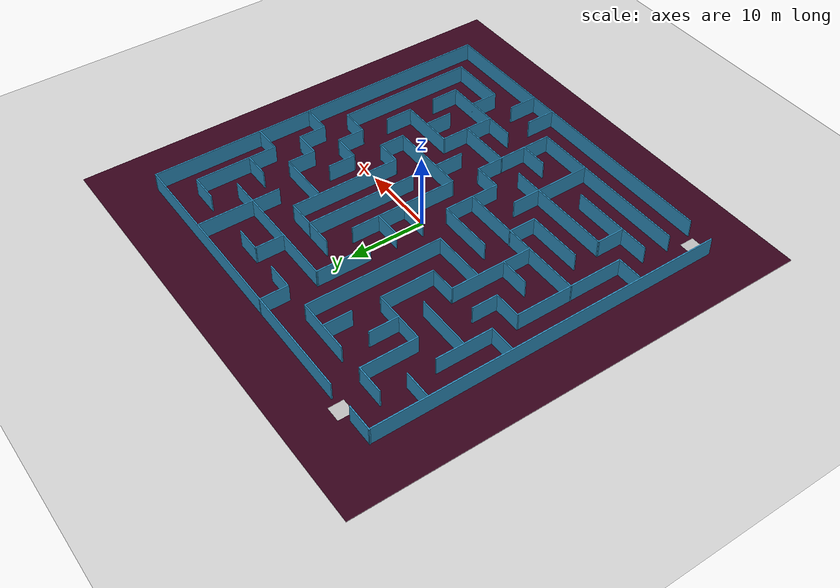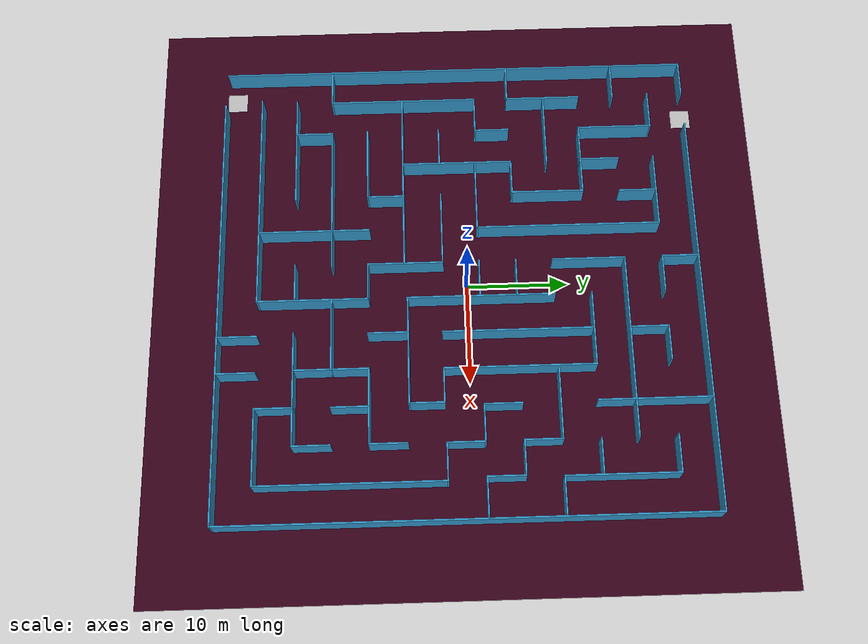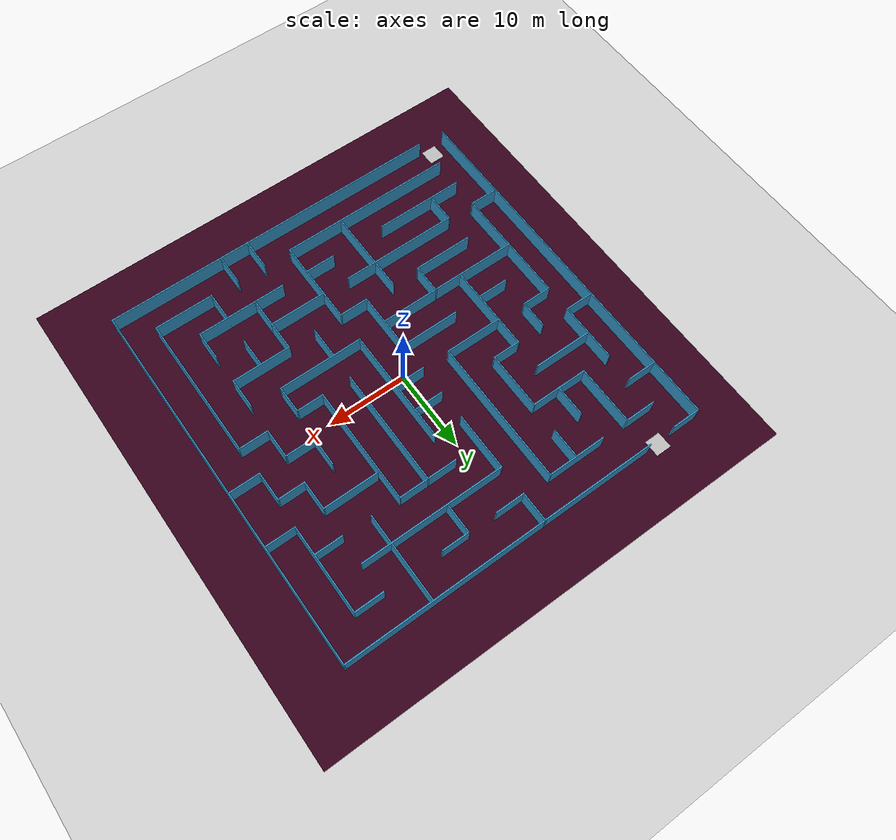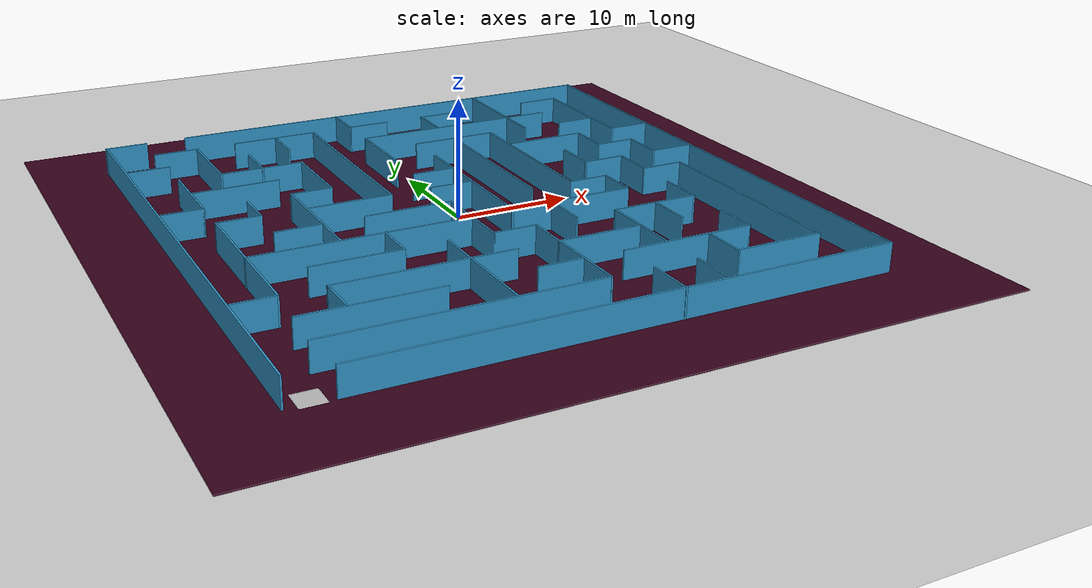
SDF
<sdf version="1.6">
 <world name="default">
  <light name="sun" type="directional">
   <pose>0 0 10 0 -0 0</pose>
   <diffuse>0.8 0.8 0.8 1</diffuse>
   <specular>0.2 0.2 0.2 1</specular>
   <attenuation>
    <range>1000</range>
    <constant>0.9</constant>
    <linear>0.01</linear>
    <quadratic>0.001</quadratic>
   </attenuation>
   <direction>-0.5 0.1 -0.9</direction>
  </light>
  <model name="ground_plane">
   <static>1</static>
   <link name="link">
    <collision name="collision">
     <geometry><plane><normal>0 0 1</normal><size>100 100</size></plane></geometry>
     <surface>
      <contact><collide_bitmask>65535</collide_bitmask></contact>
      <friction><ode><mu>100</mu><mu2>50</mu2></ode></friction>
     </surface>
    </collision>
    <visual name="visual">
     <cast_shadows>0</cast_shadows>
     <geometry><plane><normal>0 0 1</normal><size>100 100</size></plane></geometry>
     <material>
      <script><uri>file://media/materials/scripts/gazebo.material</uri><name>Gazebo/Grey</name></script>
     </material>
    </visual>
   </link>
  </model>
  <gravity>0 0 -9.8</gravity>
  <magnetic_field>6e-06 2.3e-05 -4.2e-05</magnetic_field>
  <atmosphere type="adiabatic"/>
  <physics name="default_physics" default="0" type="ode">
   <max_step_size>0.001</max_step_size>
   <real_time_factor>1</real_time_factor>
   <real_time_update_rate>1000</real_time_update_rate>
  </physics>
  <scene><ambient>0.4 0.4 0.4 1</ambient><background>0.7 0.7 0.7 1</background><shadows>1</shadows></scene>
  <audio><device>default</device></audio>
  <spherical_coordinates>
   <surface_model>EARTH_WGS84</surface_model>
   <latitude_deg>0</latitude_deg>
   <longitude_deg>0</longitude_deg>
   <elevation>0</elevation>
   <heading_deg>0</heading_deg>
  </spherical_coordinates>
  <model name="start_marker">
   <pose>-21.4513 -23.4037 0.026924 0 -0 0</pose>
   <static>1</static>
   <link name="body">
    <visual name="visual">
     <geometry><mesh><uri>model://start_marker/meshes/marker.obj</uri></mesh></geometry>
    </visual>
   </link>
  </model>
  <model name="stop_marker">
   <pose>-18.1381 22.9182 0.026924 0 -0 0</pose>
   <static>1</static>
   <link name="body">
    <visual name="visual">
     <geometry><mesh><uri>model://stop_marker/meshes/marker.obj</uri></mesh></geometry>
    </visual>
   </link>
  </model>
  <model name="FinalMaze">
   <pose>0.42654 -0.73794 0 0 -0 0</pose>
   <link name="Wall_0">
    <collision name="Wall_0_Collision">
     <geometry><box><size>60.75 60.15 0.1</size></box></geometry>
     <pose>0 0 0.05 0 -0 0</pose>
    </collision>
    <visual name="Wall_0_Visual">
     <pose>0 0 0.05 0 -0 0</pose>
     <geometry><box><size>60.75 60.15 0.1</size></box></geometry>
     <material>
      <script><uri>file://media/materials/scripts/gazebo.material</uri><name>Gazebo/Grey</name></script>
      <ambient>0.2 0 0.1 0</ambient>
     </material>
     <meta><layer>0</layer></meta>
    </visual>
    <pose>0 -1e-06 0 0 -0 -1.5708</pose>
   </link>
   <link name="Wall_10">
    <collision name="Wall_10_Collision">
     <geometry><box><size>3.75 0.15 2.5</size></box></geometry>
     <pose>0 0 1.25 0 -0 0</pose>
    </collision>
    <visual name="Wall_10_Visual">
     <pose>0 0 1.25 0 -0 0</pose>
     <geometry><box><size>3.75 0.15 2.5</size></box></geometry>
     <material>
      <script><uri>file://media/materials/scripts/gazebo.material</uri><name>Gazebo/Grey</name></script>
      <ambient>0.2 0.6 0.8 1</ambient>
     </material>
     <meta><layer>0</layer></meta>
    </visual>
    <pose>-21.955 16.4058 0 0 -0 0</pose>
   </link>
   <link name="Wall_100">
    <collision name="Wall_100_Collision">
     <geometry><box><size>3.75 0.15 2.5</size></box></geometry>
     <pose>0 0 1.25 0 -0 0</pose>
    </collision>
    <visual name="Wall_100_Visual">
     <pose>0 0 1.25 0 -0 0</pose>
     <geometry><box><size>3.75 0.15 2.5</size></box></geometry>
     <material>
      <script><uri>file://media/materials/scripts/gazebo.material</uri><name>Gazebo/Grey</name></script>
      <ambient>0.2 0.6 0.8 1</ambient>
     </material>
     <meta><layer>0</layer></meta>
    </visual>
    <pose>12.1508 -17.9194 0 0 -0 -1.5708</pose>
   </link>
   <link name="Wall_101">
    <collision name="Wall_101_Collision">
     <geometry><box><size>7.5 0.15 2.5</size></box></geometry>
     <pose>0 0 1.25 0 -0 0</pose>
    </collision>
    <visual name="Wall_101_Visual">
     <pose>0 0 1.25 0 -0 0</pose>
     <geometry><box><size>7.5 0.15 2.5</size></box></geometry>
     <material>
      <script><uri>file://media/materials/scripts/gazebo.material</uri><name>Gazebo/Grey</name></script>
      <ambient>0.2 0.6 0.8 1</ambient>
     </material>
     <meta><layer>0</layer></meta>
    </visual>
    <pose>15.8258 -19.7194 0 0 -0 0</pose>
   </link>
   <link name="Wall_102">
    <collision name="Wall_102_Collision">
     <geometry><box><size>18.25 0.15 2.5</size></box></geometry>
     <pose>0 0 1.25 0 -0 0</pose>
    </collision>
    <visual name="Wall_102_Visual">
     <pose>0 0 1.25 0 -0 0</pose>
     <geometry><box><size>18.25 0.15 2.5</size></box></geometry>
     <material>
      <script><uri>file://media/materials/scripts/gazebo.material</uri><name>Gazebo/Grey</name></script>
      <ambient>0.2 0.6 0.8 1</ambient>
     </material>
     <meta><layer>0</layer></meta>
    </visual>
    <pose>19.5008 -10.6694 0 0 -0 1.5708</pose>
   </link>
   <link name="Wall_105">
    <collision name="Wall_105_Collision">
     <geometry><box><size>3.75 0.15 2.5</size></box></geometry>
     <pose>0 0 1.25 0 -0 0</pose>
    </collision>
    <visual name="Wall_105_Visual">
     <pose>0 0 1.25 0 -0 0</pose>
     <geometry><box><size>3.75 0.15 2.5</size></box></geometry>
     <material>
      <script><uri>file://media/materials/scripts/gazebo.material</uri><name>Gazebo/Grey</name></script>
      <ambient>0.2 0.6 0.8 1</ambient>
     </material>
     <meta><layer>0</layer></meta>
    </visual>
    <pose>17.7008 -1.61938 0 0 -0 3.14159</pose>
   </link>
   <link name="Wall_106">
    <collision name="Wall_106_Collision">
     <geometry><box><size>3.75 0.15 2.5</size></box></geometry>
     <pose>0 0 1.25 0 -0 0</pose>
    </collision>
    <visual name="Wall_106_Visual">
     <pose>0 0 1.25 0 -0 0</pose>
     <geometry><box><size>3.75 0.15 2.5</size></box></geometry>
     <material>
      <script><uri>file://media/materials/scripts/gazebo.material</uri><name>Gazebo/Grey</name></script>
      <ambient>0.2 0.6 0.8 1</ambient>
     </material>
     <meta><layer>0</layer></meta>
    </visual>
    <pose>15.9008 0.180624 0 0 -0 1.5708</pose>
   </link>
   <link name="Wall_107">
    <collision name="Wall_107_Collision">
     <geometry><box><size>3.75 0.15 2.5</size></box></geometry>
     <pose>0 0 1.25 0 -0 0</pose>
    </collision>
    <visual name="Wall_107_Visual">
     <pose>0 0 1.25 0 -0 0</pose>
     <geometry><box><size>3.75 0.15 2.5</size></box></geometry>
     <material>
      <script><uri>file://media/materials/scripts/gazebo.material</uri><name>Gazebo/Grey</name></script>
      <ambient>0.2 0.6 0.8 1</ambient>
     </material>
     <meta><layer>0</layer></meta>
    </visual>
    <pose>14.1008 1.98062 0 0 -0 3.14159</pose>
   </link>
   <link name="Wall_108">
    <collision name="Wall_108_Collision">
     <geometry><box><size>3.75 0.15 2.5</size></box></geometry>
     <pose>0 0 1.25 0 -0 0</pose>
    </collision>
    <visual name="Wall_108_Visual">
     <pose>0 0 1.25 0 -0 0</pose>
     <geometry><box><size>3.75 0.15 2.5</size></box></geometry>
     <material>
      <script><uri>file://media/materials/scripts/gazebo.material</uri><name>Gazebo/Grey</name></script>
      <ambient>0.2 0.6 0.8 1</ambient>
     </material>
     <meta><layer>0</layer></meta>
    </visual>
    <pose>12.3008 3.78062 0 0 -0 1.5708</pose>
   </link>
   <link name="Wall_110">
    <collision name="Wall_110_Collision">
     <geometry><box><size>14.75 0.15 2.5</size></box></geometry>
     <pose>0 0 1.25 0 -0 0</pose>
    </collision>
    <visual name="Wall_110_Visual">
     <pose>0 0 1.25 0 -0 0</pose>
     <geometry><box><size>14.75 0.15 2.5</size></box></geometry>
     <material>
      <script><uri>file://media/materials/scripts/gazebo.material</uri><name>Gazebo/Grey</name></script>
      <ambient>0.2 0.6 0.8 1</ambient>
     </material>
     <meta><layer>0</layer></meta>
    </visual>
    <pose>5.00036 5.55631 0 0 -0 -1.5708</pose>
   </link>
   <link name="Wall_112">
    <collision name="Wall_112_Collision">
     <geometry><box><size>7 0.15 2.5</size></box></geometry>
     <pose>0 0 1.25 0 -0 0</pose>
    </collision>
    <visual name="Wall_112_Visual">
     <pose>0 0 1.25 0 -0 0</pose>
     <geometry><box><size>7 0.15 2.5</size></box></geometry>
     <material>
      <script><uri>file://media/materials/scripts/gazebo.material</uri><name>Gazebo/Grey</name></script>
      <ambient>0.2 0.6 0.8 1</ambient>
     </material>
     <meta><layer>0</layer></meta>
    </visual>
    <pose>12.4325 9.20622 0 0 -0 0</pose>
   </link>
   <link name="Wall_113">
    <collision name="Wall_113_Collision">
     <geometry><box><size>3.75 0.15 2.5</size></box></geometry>
     <pose>0 0 1.25 0 -0 0</pose>
    </collision>
    <visual name="Wall_113_Visual">
     <pose>0 0 1.25 0 -0 0</pose>
     <geometry><box><size>3.75 0.15 2.5</size></box></geometry>
     <material>
      <script><uri>file://media/materials/scripts/gazebo.material</uri><name>Gazebo/Grey</name></script>
      <ambient>0.2 0.6 0.8 1</ambient>
     </material>
     <meta><layer>0</layer></meta>
    </visual>
    <pose>15.8575 7.40622 0 0 -0 -1.5708</pose>
   </link>
   <link name="Wall_114">
    <collision name="Wall_114_Collision">
     <geometry><box><size>3.5 0.15 2.5</size></box></geometry>
     <pose>0 0 1.25 0 -0 0</pose>
    </collision>
    <visual name="Wall_114_Visual">
     <pose>0 0 1.25 0 -0 0</pose>
     <geometry><box><size>3.5 0.15 2.5</size></box></geometry>
     <material>
      <script><uri>file://media/materials/scripts/gazebo.material</uri><name>Gazebo/Grey</name></script>
      <ambient>0.2 0.6 0.8 1</ambient>
     </material>
     <meta><layer>0</layer></meta>
    </visual>
    <pose>17.5325 5.60621 0 0 -0 0</pose>
   </link>
   <link name="Wall_115">
    <collision name="Wall_115_Collision">
     <geometry><box><size>3.75 0.15 2.5</size></box></geometry>
     <pose>0 0 1.25 0 -0 0</pose>
    </collision>
    <visual name="Wall_115_Visual">
     <pose>0 0 1.25 0 -0 0</pose>
     <geometry><box><size>3.75 0.15 2.5</size></box></geometry>
     <material>
      <script><uri>file://media/materials/scripts/gazebo.material</uri><name>Gazebo/Grey</name></script>
      <ambient>0.2 0.6 0.8 1</ambient>
     </material>
     <meta><layer>0</layer></meta>
    </visual>
    <pose>19.2075 3.80621 0 0 -0 -1.5708</pose>
   </link>
   <link name="Wall_116">
    <collision name="Wall_116_Collision">
     <geometry><box><size>4 0.15 2.5</size></box></geometry>
     <pose>0 0 1.25 0 -0 0</pose>
    </collision>
    <visual name="Wall_116_Visual">
     <pose>0 0 1.25 0 -0 0</pose>
     <geometry><box><size>4 0.15 2.5</size></box></geometry>
     <material>
      <script><uri>file://media/materials/scripts/gazebo.material</uri><name>Gazebo/Grey</name></script>
      <ambient>0.2 0.6 0.8 1</ambient>
     </material>
     <meta><layer>0</layer></meta>
    </visual>
    <pose>21.1325 2.00622 0 0 -0 0</pose>
   </link>
   <link name="Wall_118">
    <collision name="Wall_118_Collision">
     <geometry><box><size>3.75 0.15 2.5</size></box></geometry>
     <pose>0 0 1.25 0 -0 0</pose>
    </collision>
    <visual name="Wall_118_Visual">
     <pose>0 0 1.25 0 -0 0</pose>
     <geometry><box><size>3.75 0.15 2.5</size></box></geometry>
     <material>
      <script><uri>file://media/materials/scripts/gazebo.material</uri><name>Gazebo/Grey</name></script>
      <ambient>0.2 0.6 0.8 1</ambient>
     </material>
     <meta><layer>0</layer></meta>
    </visual>
    <pose>17.5523 19.9978 0 0 -0 0</pose>
   </link>
   <link name="Wall_119">
    <collision name="Wall_119_Collision">
     <geometry><box><size>11 0.15 2.5</size></box></geometry>
     <pose>0 0 1.25 0 -0 0</pose>
    </collision>
    <visual name="Wall_119_Visual">
     <pose>0 0 1.25 0 -0 0</pose>
     <geometry><box><size>11 0.15 2.5</size></box></geometry>
     <material>
      <script><uri>file://media/materials/scripts/gazebo.material</uri><name>Gazebo/Grey</name></script>
      <ambient>0.2 0.6 0.8 1</ambient>
     </material>
     <meta><layer>0</layer></meta>
    </visual>
    <pose>19.3523 14.5728 0 0 -0 -1.5708</pose>
   </link>
   <link name="Wall_12">
    <collision name="Wall_12_Collision">
     <geometry><box><size>3.5913 0.15 2.5</size></box></geometry>
     <pose>0 0 1.25 0 -0 0</pose>
    </collision>
    <visual name="Wall_12_Visual">
     <pose>0 0 1.25 0 -0 0</pose>
     <geometry><box><size>3.5913 0.15 2.5</size></box></geometry>
     <material>
      <script><uri>file://media/materials/scripts/gazebo.material</uri><name>Gazebo/Grey</name></script>
      <ambient>0.2 0.6 0.8 1</ambient>
     </material>
     <meta><layer>0</layer></meta>
    </visual>
    <pose>-21.9946 5.49522 0 0 -0 0</pose>
   </link>
   <link name="Wall_120">
    <collision name="Wall_120_Collision">
     <geometry><box><size>3.75 0.15 2.5</size></box></geometry>
     <pose>0 0 1.25 0 -0 0</pose>
    </collision>
    <visual name="Wall_120_Visual">
     <pose>0 0 1.25 0 -0 0</pose>
     <geometry><box><size>3.75 0.15 2.5</size></box></geometry>
     <material>
      <script><uri>file://media/materials/scripts/gazebo.material</uri><name>Gazebo/Grey</name></script>
      <ambient>0.2 0.6 0.8 1</ambient>
     </material>
     <meta><layer>0</layer></meta>
    </visual>
    <pose>21.1523 9.14781 0 0 -0 0</pose>
   </link>
   <link name="Wall_122">
    <collision name="Wall_122_Collision">
     <geometry><box><size>3.5 0.15 2.5</size></box></geometry>
     <pose>0 0 1.25 0 -0 0</pose>
    </collision>
    <visual name="Wall_122_Visual">
     <pose>0 0 1.25 0 -0 0</pose>
     <geometry><box><size>3.5 0.15 2.5</size></box></geometry>
     <material>
      <script><uri>file://media/materials/scripts/gazebo.material</uri><name>Gazebo/Grey</name></script>
      <ambient>0.2 0.6 0.8 1</ambient>
     </material>
     <meta><layer>0</layer></meta>
    </visual>
    <pose>17.5687 12.777 0 0 -0 3.14159</pose>
   </link>
   <link name="Wall_124">
    <collision name="Wall_124_Collision">
     <geometry><box><size>4 0.15 2.5</size></box></geometry>
     <pose>0 0 1.25 0 -0 0</pose>
    </collision>
    <visual name="Wall_124_Visual">
     <pose>0 0 1.25 0 -0 0</pose>
     <geometry><box><size>4 0.15 2.5</size></box></geometry>
     <material>
      <script><uri>file://media/materials/scripts/gazebo.material</uri><name>Gazebo/Grey</name></script>
      <ambient>0.2 0.6 0.8 1</ambient>
     </material>
     <meta><layer>0</layer></meta>
    </visual>
    <pose>4.9715 -21.6041 0 0 -0 1.5708</pose>
   </link>
   <link name="Wall_126">
    <collision name="Wall_126_Collision">
     <geometry><box><size>3.75 0.15 2.5</size></box></geometry>
     <pose>0 0 1.25 0 -0 0</pose>
    </collision>
    <visual name="Wall_126_Visual">
     <pose>0 0 1.25 0 -0 0</pose>
     <geometry><box><size>3.75 0.15 2.5</size></box></geometry>
     <material>
      <script><uri>file://media/materials/scripts/gazebo.material</uri><name>Gazebo/Grey</name></script>
      <ambient>0.2 0.6 0.8 1</ambient>
     </material>
     <meta><layer>0</layer></meta>
    </visual>
    <pose>8.6216 -21.5307 0 0 -0 1.5708</pose>
   </link>
   <link name="Wall_13">
    <collision name="Wall_13_Collision">
     <geometry><box><size>7.5 0.15 2.5</size></box></geometry>
     <pose>0 0 1.25 0 -0 0</pose>
    </collision>
    <visual name="Wall_13_Visual">
     <pose>0 0 1.25 0 -0 0</pose>
     <geometry><box><size>7.5 0.15 2.5</size></box></geometry>
     <material>
      <script><uri>file://media/materials/scripts/gazebo.material</uri><name>Gazebo/Grey</name></script>
      <ambient>0.2 0.6 0.8 1</ambient>
     </material>
     <meta><layer>0</layer></meta>
    </visual>
    <pose>-20.2343 9.17022 0 0 -0 1.5708</pose>
   </link>
   <link name="Wall_16">
    <collision name="Wall_16_Collision">
     <geometry><box><size>7.5 0.15 2.5</size></box></geometry>
     <pose>0 0 1.25 0 -0 0</pose>
    </collision>
    <visual name="Wall_16_Visual">
     <pose>0 0 1.25 0 -0 0</pose>
     <geometry><box><size>7.5 0.15 2.5</size></box></geometry>
     <material>
      <script><uri>file://media/materials/scripts/gazebo.material</uri><name>Gazebo/Grey</name></script>
      <ambient>0.2 0.6 0.8 1</ambient>
     </material>
     <meta><layer>0</layer></meta>
    </visual>
    <pose>-16.5578 9.22002 0 0 -0 0</pose>
   </link>
   <link name="Wall_18">
    <collision name="Wall_18_Collision">
     <geometry><box><size>3.90879 0.15 2.5</size></box></geometry>
     <pose>0 0 1.25 0 -0 0</pose>
    </collision>
    <visual name="Wall_18_Visual">
     <pose>0 0 1.25 0 -0 0</pose>
     <geometry><box><size>3.90879 0.15 2.5</size></box></geometry>
     <material>
      <script><uri>file://media/materials/scripts/gazebo.material</uri><name>Gazebo/Grey</name></script>
      <ambient>0.2 0.6 0.8 1</ambient>
     </material>
     <meta><layer>0</layer></meta>
    </visual>
    <pose>-18.5328 20.0291 0 0 -0 0</pose>
   </link>
   <link name="Wall_2">
    <collision name="Wall_2_Collision">
     <geometry><box><size>3.68458 0.15 2.5</size></box></geometry>
     <pose>0 0 1.25 0 -0 0</pose>
    </collision>
    <visual name="Wall_2_Visual">
     <pose>0 0 1.25 0 -0 0</pose>
     <geometry><box><size>3.68458 0.15 2.5</size></box></geometry>
     <material>
      <script><uri>file://media/materials/scripts/gazebo.material</uri><name>Gazebo/Grey</name></script>
      <ambient>0.2 0.6 0.8 1</ambient>
     </material>
     <meta><layer>0</layer></meta>
    </visual>
    <pose>-22.0956 23.56 0 0 -0 3.14159</pose>
   </link>
   <link name="Wall_20">
    <collision name="Wall_20_Collision">
     <geometry><box><size>7.5 0.15 2.5</size></box></geometry>
     <pose>0 0 1.25 0 -0 0</pose>
    </collision>
    <visual name="Wall_20_Visual">
     <pose>0 0 1.25 0 -0 0</pose>
     <geometry><box><size>7.5 0.15 2.5</size></box></geometry>
     <material>
      <script><uri>file://media/materials/scripts/gazebo.material</uri><name>Gazebo/Grey</name></script>
      <ambient>0.2 0.6 0.8 1</ambient>
     </material>
     <meta><layer>0</layer></meta>
    </visual>
    <pose>-16.6761 16.3541 0 0 -0 -1.5708</pose>
   </link>
   <link name="Wall_22">
    <collision name="Wall_22_Collision">
     <geometry><box><size>7.25 0.15 2.5</size></box></geometry>
     <pose>0 0 1.25 0 -0 0</pose>
    </collision>
    <visual name="Wall_22_Visual">
     <pose>0 0 1.25 0 -0 0</pose>
     <geometry><box><size>7.25 0.15 2.5</size></box></geometry>
     <material>
      <script><uri>file://media/materials/scripts/gazebo.material</uri><name>Gazebo/Grey</name></script>
      <ambient>0.2 0.6 0.8 1</ambient>
     </material>
     <meta><layer>0</layer></meta>
    </visual>
    <pose>-13.1261 12.6791 0 0 -0 0</pose>
   </link>
   <link name="Wall_23">
    <collision name="Wall_23_Collision">
     <geometry><box><size>7.25 0.15 2.5</size></box></geometry>
     <pose>0 0 1.25 0 -0 0</pose>
    </collision>
    <visual name="Wall_23_Visual">
     <pose>0 0 1.25 0 -0 0</pose>
     <geometry><box><size>7.25 0.15 2.5</size></box></geometry>
     <material>
      <script><uri>file://media/materials/scripts/gazebo.material</uri><name>Gazebo/Grey</name></script>
      <ambient>0.2 0.6 0.8 1</ambient>
     </material>
     <meta><layer>0</layer></meta>
    </visual>
    <pose>-9.5761 9.12912 0 0 -0 -1.5708</pose>
   </link>
   <link name="Wall_24">
    <collision name="Wall_24_Collision">
     <geometry><box><size>3.59863 0.15 2.5</size></box></geometry>
     <pose>0 0 1.25 0 -0 0</pose>
    </collision>
    <visual name="Wall_24_Visual">
     <pose>0 0 1.25 0 -0 0</pose>
     <geometry><box><size>3.59863 0.15 2.5</size></box></geometry>
     <material>
      <script><uri>file://media/materials/scripts/gazebo.material</uri><name>Gazebo/Grey</name></script>
      <ambient>0.2 0.6 0.8 1</ambient>
     </material>
     <meta><layer>0</layer></meta>
    </visual>
    <pose>-11.3004 5.57911 0 0 -0 3.14159</pose>
   </link>
   <link name="Wall_25">
    <collision name="Wall_25_Collision">
     <geometry><box><size>11 0.15 2.5</size></box></geometry>
     <pose>0 0 1.25 0 -0 0</pose>
    </collision>
    <visual name="Wall_25_Visual">
     <pose>0 0 1.25 0 -0 0</pose>
     <geometry><box><size>11 0.15 2.5</size></box></geometry>
     <material>
      <script><uri>file://media/materials/scripts/gazebo.material</uri><name>Gazebo/Grey</name></script>
      <ambient>0.2 0.6 0.8 1</ambient>
     </material>
     <meta><layer>0</layer></meta>
    </visual>
    <pose>-13.005 0.154115 0 0 -0 -1.5708</pose>
   </link>
   <link name="Wall_27">
    <collision name="Wall_27_Collision">
     <geometry><box><size>3.5 0.15 2.5</size></box></geometry>
     <pose>0 0 1.25 0 -0 0</pose>
    </collision>
    <visual name="Wall_27_Visual">
     <pose>0 0 1.25 0 -0 0</pose>
     <geometry><box><size>3.5 0.15 2.5</size></box></geometry>
     <material>
      <script><uri>file://media/materials/scripts/gazebo.material</uri><name>Gazebo/Grey</name></script>
      <ambient>0.2 0.6 0.8 1</ambient>
     </material>
     <meta><layer>0</layer></meta>
    </visual>
    <pose>-16.6616 3.76426 0 0 -0 -1.5708</pose>
   </link>
   <link name="Wall_28">
    <collision name="Wall_28_Collision">
     <geometry><box><size>3.75 0.15 2.5</size></box></geometry>
     <pose>0 0 1.25 0 -0 0</pose>
    </collision>
    <visual name="Wall_28_Visual">
     <pose>0 0 1.25 0 -0 0</pose>
     <geometry><box><size>3.75 0.15 2.5</size></box></geometry>
     <material>
      <script><uri>file://media/materials/scripts/gazebo.material</uri><name>Gazebo/Grey</name></script>
      <ambient>0.2 0.6 0.8 1</ambient>
     </material>
     <meta><layer>0</layer></meta>
    </visual>
    <pose>-18.4616 2.08926 0 0 -0 3.14159</pose>
   </link>
   <link name="Wall_29">
    <collision name="Wall_29_Collision">
     <geometry><box><size>14.75 0.15 2.5</size></box></geometry>
     <pose>0 0 1.25 0 -0 0</pose>
    </collision>
    <visual name="Wall_29_Visual">
     <pose>0 0 1.25 0 -0 0</pose>
     <geometry><box><size>14.75 0.15 2.5</size></box></geometry>
     <material>
      <script><uri>file://media/materials/scripts/gazebo.material</uri><name>Gazebo/Grey</name></script>
      <ambient>0.2 0.6 0.8 1</ambient>
     </material>
     <meta><layer>0</layer></meta>
    </visual>
    <pose>-20.2616 -5.21074 0 0 -0 -1.5708</pose>
   </link>
   <link name="Wall_3">
    <collision name="Wall_3_Collision">
     <geometry><box><size>47 0.15 2.5</size></box></geometry>
     <pose>0 0 1.25 0 -0 0</pose>
    </collision>
    <visual name="Wall_3_Visual">
     <pose>0 0 1.25 0 -0 0</pose>
     <geometry><box><size>47 0.15 2.5</size></box></geometry>
     <material>
      <script><uri>file://media/materials/scripts/gazebo.material</uri><name>Gazebo/Grey</name></script>
      <ambient>0.2 0.6 0.8 1</ambient>
     </material>
     <meta><layer>0</layer></meta>
    </visual>
    <pose>-23.8014 0.135041 0 0 -0 -1.5708</pose>
   </link>
   <link name="Wall_30">
    <collision name="Wall_30_Collision">
     <geometry><box><size>3.5 0.15 2.5</size></box></geometry>
     <pose>0 0 1.25 0 -0 0</pose>
    </collision>
    <visual name="Wall_30_Visual">
     <pose>0 0 1.25 0 -0 0</pose>
     <geometry><box><size>3.5 0.15 2.5</size></box></geometry>
     <material>
      <script><uri>file://media/materials/scripts/gazebo.material</uri><name>Gazebo/Grey</name></script>
      <ambient>0.2 0.6 0.8 1</ambient>
     </material>
     <meta><layer>0</layer></meta>
    </visual>
    <pose>-21.9366 -12.5107 0 0 -0 3.14159</pose>
   </link>
   <link name="Wall_32">
    <collision name="Wall_32_Collision">
     <geometry><box><size>18.25 0.15 2.5</size></box></geometry>
     <pose>0 0 1.25 0 -0 0</pose>
    </collision>
    <visual name="Wall_32_Visual">
     <pose>0 0 1.25 0 -0 0</pose>
     <geometry><box><size>18.25 0.15 2.5</size></box></geometry>
     <material>
      <script><uri>file://media/materials/scripts/gazebo.material</uri><name>Gazebo/Grey</name></script>
      <ambient>0.2 0.6 0.8 1</ambient>
     </material>
     <meta><layer>0</layer></meta>
    </visual>
    <pose>-11.255 -5.35367 0 0 -0 0</pose>
   </link>
   <link name="Wall_34">
    <collision name="Wall_34_Collision">
     <geometry><box><size>7.5 0.15 2.5</size></box></geometry>
     <pose>0 0 1.25 0 -0 0</pose>
    </collision>
    <visual name="Wall_34_Visual">
     <pose>0 0 1.25 0 -0 0</pose>
     <geometry><box><size>7.5 0.15 2.5</size></box></geometry>
     <material>
      <script><uri>file://media/materials/scripts/gazebo.material</uri><name>Gazebo/Grey</name></script>
      <ambient>0.2 0.6 0.8 1</ambient>
     </material>
     <meta><layer>0</layer></meta>
    </visual>
    <pose>-5.86599 -1.59318 0 0 -0 0</pose>
   </link>
   <link name="Wall_35">
    <collision name="Wall_35_Collision">
     <geometry><box><size>7.5 0.15 2.5</size></box></geometry>
     <pose>0 0 1.25 0 -0 0</pose>
    </collision>
    <visual name="Wall_35_Visual">
     <pose>0 0 1.25 0 -0 0</pose>
     <geometry><box><size>7.5 0.15 2.5</size></box></geometry>
     <material>
      <script><uri>file://media/materials/scripts/gazebo.material</uri><name>Gazebo/Grey</name></script>
      <ambient>0.2 0.6 0.8 1</ambient>
     </material>
     <meta><layer>0</layer></meta>
    </visual>
    <pose>-2.19099 -5.26818 0 0 -0 -1.5708</pose>
   </link>
   <link name="Wall_36">
    <collision name="Wall_36_Collision">
     <geometry><box><size>3.75 0.15 2.5</size></box></geometry>
     <pose>0 0 1.25 0 -0 0</pose>
    </collision>
    <visual name="Wall_36_Visual">
     <pose>0 0 1.25 0 -0 0</pose>
     <geometry><box><size>3.75 0.15 2.5</size></box></geometry>
     <material>
      <script><uri>file://media/materials/scripts/gazebo.material</uri><name>Gazebo/Grey</name></script>
      <ambient>0.2 0.6 0.8 1</ambient>
     </material>
     <meta><layer>0</layer></meta>
    </visual>
    <pose>-0.390989 -8.94318 0 0 -0 0</pose>
   </link>
   <link name="Wall_37">
    <collision name="Wall_37_Collision">
     <geometry><box><size>10.9473 0.15 2.5</size></box></geometry>
     <pose>0 0 1.25 0 -0 0</pose>
    </collision>
    <visual name="Wall_37_Visual">
     <pose>0 0 1.25 0 -0 0</pose>
     <geometry><box><size>10.9473 0.15 2.5</size></box></geometry>
     <material>
      <script><uri>file://media/materials/scripts/gazebo.material</uri><name>Gazebo/Grey</name></script>
      <ambient>0.2 0.6 0.8 1</ambient>
     </material>
     <meta><layer>0</layer></meta>
    </visual>
    <pose>1.40901 -14.3418 0 0 -0 -1.5708</pose>
   </link>
   <link name="Wall_38">
    <collision name="Wall_38_Collision">
     <geometry><box><size>22.25 0.15 2.5</size></box></geometry>
     <pose>0 0 1.25 0 -0 0</pose>
    </collision>
    <visual name="Wall_38_Visual">
     <pose>0 0 1.25 0 -0 0</pose>
     <geometry><box><size>22.25 0.15 2.5</size></box></geometry>
     <material>
      <script><uri>file://media/materials/scripts/gazebo.material</uri><name>Gazebo/Grey</name></script>
      <ambient>0.2 0.6 0.8 1</ambient>
     </material>
     <meta><layer>0</layer></meta>
    </visual>
    <pose>-9.64099 -19.7207 0 0 -0 3.14159</pose>
   </link>
   <link name="Wall_40">
    <collision name="Wall_40_Collision">
     <geometry><box><size>11.25 0.15 2.5</size></box></geometry>
     <pose>0 0 1.25 0 -0 0</pose>
    </collision>
    <visual name="Wall_40_Visual">
     <pose>0 0 1.25 0 -0 0</pose>
     <geometry><box><size>11.25 0.15 2.5</size></box></geometry>
     <material>
      <script><uri>file://media/materials/scripts/gazebo.material</uri><name>Gazebo/Grey</name></script>
      <ambient>0.2 0.6 0.8 1</ambient>
     </material>
     <meta><layer>0</layer></meta>
    </visual>
    <pose>-14.9454 -16.1099 0 0 -0 0</pose>
   </link>
   <link name="Wall_42">
    <collision name="Wall_42_Collision">
     <geometry><box><size>3.7415 0.15 2.5</size></box></geometry>
     <pose>0 0 1.25 0 -0 0</pose>
    </collision>
    <visual name="Wall_42_Visual">
     <pose>0 0 1.25 0 -0 0</pose>
     <geometry><box><size>3.7415 0.15 2.5</size></box></geometry>
     <material>
      <script><uri>file://media/materials/scripts/gazebo.material</uri><name>Gazebo/Grey</name></script>
      <ambient>0.2 0.6 0.8 1</ambient>
     </material>
     <meta><layer>0</layer></meta>
    </visual>
    <pose>-16.7004 -14.2452 0 0 -0 1.5708</pose>
   </link>
   <link name="Wall_43">
    <collision name="Wall_43_Collision">
     <geometry><box><size>14.75 0.15 2.5</size></box></geometry>
     <pose>0 0 1.25 0 -0 0</pose>
    </collision>
    <visual name="Wall_43_Visual">
     <pose>0 0 1.25 0 -0 0</pose>
     <geometry><box><size>14.75 0.15 2.5</size></box></geometry>
     <material>
      <script><uri>file://media/materials/scripts/gazebo.material</uri><name>Gazebo/Grey</name></script>
      <ambient>0.2 0.6 0.8 1</ambient>
     </material>
     <meta><layer>0</layer></meta>
    </visual>
    <pose>-9.40042 -12.4839 0 0 -0 0</pose>
   </link>
   <link name="Wall_45">
    <collision name="Wall_45_Collision">
     <geometry><box><size>11 0.15 2.5</size></box></geometry>
     <pose>0 0 1.25 0 -0 0</pose>
    </collision>
    <visual name="Wall_45_Visual">
     <pose>0 0 1.25 0 -0 0</pose>
     <geometry><box><size>11 0.15 2.5</size></box></geometry>
     <material>
      <script><uri>file://media/materials/scripts/gazebo.material</uri><name>Gazebo/Grey</name></script>
      <ambient>0.2 0.6 0.8 1</ambient>
     </material>
     <meta><layer>0</layer></meta>
    </visual>
    <pose>-5.86742 -14.2209 0 0 -0 -1.5708</pose>
   </link>
   <link name="Wall_47">
    <collision name="Wall_47_Collision">
     <geometry><box><size>3.75 0.15 2.5</size></box></geometry>
     <pose>0 0 1.25 0 -0 0</pose>
    </collision>
    <visual name="Wall_47_Visual">
     <pose>0 0 1.25 0 -0 0</pose>
     <geometry><box><size>3.75 0.15 2.5</size></box></geometry>
     <material>
      <script><uri>file://media/materials/scripts/gazebo.material</uri><name>Gazebo/Grey</name></script>
      <ambient>0.2 0.6 0.8 1</ambient>
     </material>
     <meta><layer>0</layer></meta>
    </visual>
    <pose>-9.45542 -7.11144 0 0 -0 -1.5708</pose>
   </link>
   <link name="Wall_48">
    <collision name="Wall_48_Collision">
     <geometry><box><size>7.5 0.15 2.5</size></box></geometry>
     <pose>0 0 1.25 0 -0 0</pose>
    </collision>
    <visual name="Wall_48_Visual">
     <pose>0 0 1.25 0 -0 0</pose>
     <geometry><box><size>7.5 0.15 2.5</size></box></geometry>
     <material>
      <script><uri>file://media/materials/scripts/gazebo.material</uri><name>Gazebo/Grey</name></script>
      <ambient>0.2 0.6 0.8 1</ambient>
     </material>
     <meta><layer>0</layer></meta>
    </visual>
    <pose>-13.1304 -8.91144 0 0 -0 3.14159</pose>
   </link>
   <link name="Wall_50">
    <collision name="Wall_50_Collision">
     <geometry><box><size>4 0.15 2.5</size></box></geometry>
     <pose>0 0 1.25 0 -0 0</pose>
    </collision>
    <visual name="Wall_50_Visual">
     <pose>0 0 1.25 0 -0 0</pose>
     <geometry><box><size>4 0.15 2.5</size></box></geometry>
     <material>
      <script><uri>file://media/materials/scripts/gazebo.material</uri><name>Gazebo/Grey</name></script>
      <ambient>0.2 0.6 0.8 1</ambient>
     </material>
     <meta><layer>0</layer></meta>
    </visual>
    <pose>-14.9339 -1.65444 0 0 -0 3.14159</pose>
   </link>
   <link name="Wall_52">
    <collision name="Wall_52_Collision">
     <geometry><box><size>4 0.15 2.5</size></box></geometry>
     <pose>0 0 1.25 0 -0 0</pose>
    </collision>
    <visual name="Wall_52_Visual">
     <pose>0 0 1.25 0 -0 0</pose>
     <geometry><box><size>4 0.15 2.5</size></box></geometry>
     <material>
      <script><uri>file://media/materials/scripts/gazebo.material</uri><name>Gazebo/Grey</name></script>
      <ambient>0.2 0.6 0.8 1</ambient>
     </material>
     <meta><layer>0</layer></meta>
    </visual>
    <pose>-13.0779 14.5676 0 0 -0 -1.5708</pose>
   </link>
   <link name="Wall_54">
    <collision name="Wall_54_Collision">
     <geometry><box><size>7.5 0.15 2.5</size></box></geometry>
     <pose>0 0 1.25 0 -0 0</pose>
    </collision>
    <visual name="Wall_54_Visual">
     <pose>0 0 1.25 0 -0 0</pose>
     <geometry><box><size>7.5 0.15 2.5</size></box></geometry>
     <material>
      <script><uri>file://media/materials/scripts/gazebo.material</uri><name>Gazebo/Grey</name></script>
      <ambient>0.2 0.6 0.8 1</ambient>
     </material>
     <meta><layer>0</layer></meta>
    </visual>
    <pose>-9.50642 20.0461 0 0 -0 0</pose>
   </link>
   <link name="Wall_55">
    <collision name="Wall_55_Collision">
     <geometry><box><size>18.25 0.15 2.5</size></box></geometry>
     <pose>0 0 1.25 0 -0 0</pose>
    </collision>
    <visual name="Wall_55_Visual">
     <pose>0 0 1.25 0 -0 0</pose>
     <geometry><box><size>18.25 0.15 2.5</size></box></geometry>
     <material>
      <script><uri>file://media/materials/scripts/gazebo.material</uri><name>Gazebo/Grey</name></script>
      <ambient>0.2 0.6 0.8 1</ambient>
     </material>
     <meta><layer>0</layer></meta>
    </visual>
    <pose>-5.83142 10.9961 0 0 -0 -1.5708</pose>
   </link>
   <link name="Wall_56">
    <collision name="Wall_56_Collision">
     <geometry><box><size>7.25 0.15 2.5</size></box></geometry>
     <pose>0 0 1.25 0 -0 0</pose>
    </collision>
    <visual name="Wall_56_Visual">
     <pose>0 0 1.25 0 -0 0</pose>
     <geometry><box><size>7.25 0.15 2.5</size></box></geometry>
     <material>
      <script><uri>file://media/materials/scripts/gazebo.material</uri><name>Gazebo/Grey</name></script>
      <ambient>0.2 0.6 0.8 1</ambient>
     </material>
     <meta><layer>0</layer></meta>
    </visual>
    <pose>-9.38142 1.94606 0 0 -0 3.14159</pose>
   </link>
   <link name="Wall_58">
    <collision name="Wall_58_Collision">
     <geometry><box><size>3.75 0.15 2.5</size></box></geometry>
     <pose>0 0 1.25 0 -0 0</pose>
    </collision>
    <visual name="Wall_58_Visual">
     <pose>0 0 1.25 0 -0 0</pose>
     <geometry><box><size>3.75 0.15 2.5</size></box></geometry>
     <material>
      <script><uri>file://media/materials/scripts/gazebo.material</uri><name>Gazebo/Grey</name></script>
      <ambient>0.2 0.6 0.8 1</ambient>
     </material>
     <meta><layer>0</layer></meta>
    </visual>
    <pose>-9.45542 18.1771 0 0 -0 -1.5708</pose>
   </link>
   <link name="Wall_6">
    <collision name="Wall_6_Collision">
     <geometry><box><size>40 0.15 2.5</size></box></geometry>
     <pose>0 0 1.25 0 -0 0</pose>
    </collision>
    <visual name="Wall_6_Visual">
     <pose>0 0 1.25 0 -0 0</pose>
     <geometry><box><size>40 0.15 2.5</size></box></geometry>
     <material>
      <script><uri>file://media/materials/scripts/gazebo.material</uri><name>Gazebo/Grey</name></script>
      <ambient>0.2 0.6 0.8 1</ambient>
     </material>
     <meta><layer>0</layer></meta>
    </visual>
    <pose>3.15686 23.6189 0 0 -0 0</pose>
   </link>
   <link name="Wall_60">
    <collision name="Wall_60_Collision">
     <geometry><box><size>3.75 0.15 2.5</size></box></geometry>
     <pose>0 0 1.25 0 -0 0</pose>
    </collision>
    <visual name="Wall_60_Visual">
     <pose>0 0 1.25 0 -0 0</pose>
     <geometry><box><size>3.75 0.15 2.5</size></box></geometry>
     <material>
      <script><uri>file://media/materials/scripts/gazebo.material</uri><name>Gazebo/Grey</name></script>
      <ambient>0.2 0.6 0.8 1</ambient>
     </material>
     <meta><layer>0</layer></meta>
    </visual>
    <pose>-2.23386 21.8368 0 0 -0 -1.5708</pose>
   </link>
   <link name="Wall_61">
    <collision name="Wall_61_Collision">
     <geometry><box><size>3.75 0.15 2.5</size></box></geometry>
     <pose>0 0 1.25 0 -0 0</pose>
    </collision>
    <visual name="Wall_61_Visual">
     <pose>0 0 1.25 0 -0 0</pose>
     <geometry><box><size>3.75 0.15 2.5</size></box></geometry>
     <material>
      <script><uri>file://media/materials/scripts/gazebo.material</uri><name>Gazebo/Grey</name></script>
      <ambient>0.2 0.6 0.8 1</ambient>
     </material>
     <meta><layer>0</layer></meta>
    </visual>
    <pose>-0.433857 20.0368 0 0 -0 0</pose>
   </link>
   <link name="Wall_63">
    <collision name="Wall_63_Collision">
     <geometry><box><size>3.5 0.15 2.5</size></box></geometry>
     <pose>0 0 1.25 0 -0 0</pose>
    </collision>
    <visual name="Wall_63_Visual">
     <pose>0 0 1.25 0 -0 0</pose>
     <geometry><box><size>3.5 0.15 2.5</size></box></geometry>
     <material>
      <script><uri>file://media/materials/scripts/gazebo.material</uri><name>Gazebo/Grey</name></script>
      <ambient>0.2 0.6 0.8 1</ambient>
     </material>
     <meta><layer>0</layer></meta>
    </visual>
    <pose>6.70854 20.0368 0 0 -0 3.14159</pose>
   </link>
   <link name="Wall_64">
    <collision name="Wall_64_Collision">
     <geometry><box><size>3.75 0.15 2.5</size></box></geometry>
     <pose>0 0 1.25 0 -0 0</pose>
    </collision>
    <visual name="Wall_64_Visual">
     <pose>0 0 1.25 0 -0 0</pose>
     <geometry><box><size>3.75 0.15 2.5</size></box></geometry>
     <material>
      <script><uri>file://media/materials/scripts/gazebo.material</uri><name>Gazebo/Grey</name></script>
      <ambient>0.2 0.6 0.8 1</ambient>
     </material>
     <meta><layer>0</layer></meta>
    </visual>
    <pose>5.03353 18.2368 0 0 -0 -1.5708</pose>
   </link>
   <link name="Wall_66">
    <collision name="Wall_66_Collision">
     <geometry><box><size>18.25 0.15 2.5</size></box></geometry>
     <pose>0 0 1.25 0 -0 0</pose>
    </collision>
    <visual name="Wall_66_Visual">
     <pose>0 0 1.25 0 -0 0</pose>
     <geometry><box><size>18.25 0.15 2.5</size></box></geometry>
     <material>
      <script><uri>file://media/materials/scripts/gazebo.material</uri><name>Gazebo/Grey</name></script>
      <ambient>0.2 0.6 0.8 1</ambient>
     </material>
     <meta><layer>0</layer></meta>
    </visual>
    <pose>6.86832 16.3324 0 0 -0 0</pose>
   </link>
   <link name="Wall_68">
    <collision name="Wall_68_Collision">
     <geometry><box><size>7.25 0.15 2.5</size></box></geometry>
     <pose>0 0 1.25 0 -0 0</pose>
    </collision>
    <visual name="Wall_68_Visual">
     <pose>0 0 1.25 0 -0 0</pose>
     <geometry><box><size>7.25 0.15 2.5</size></box></geometry>
     <material>
      <script><uri>file://media/materials/scripts/gazebo.material</uri><name>Gazebo/Grey</name></script>
      <ambient>0.2 0.6 0.8 1</ambient>
     </material>
     <meta><layer>0</layer></meta>
    </visual>
    <pose>-2.18168 12.7824 0 0 -0 -1.5708</pose>
   </link>
   <link name="Wall_7">
    <collision name="Wall_7_Collision">
     <geometry><box><size>47.25 0.15 2.5</size></box></geometry>
     <pose>0 0 1.25 0 -0 0</pose>
    </collision>
    <visual name="Wall_7_Visual">
     <pose>0 0 1.25 0 -0 0</pose>
     <geometry><box><size>47.25 0.15 2.5</size></box></geometry>
     <material>
      <script><uri>file://media/materials/scripts/gazebo.material</uri><name>Gazebo/Grey</name></script>
      <ambient>0.2 0.6 0.8 1</ambient>
     </material>
     <meta><layer>0</layer></meta>
    </visual>
    <pose>23.0819 0.068924 0 0 -0 -1.5708</pose>
   </link>
   <link name="Wall_70">
    <collision name="Wall_70_Collision">
     <geometry><box><size>11 0.15 2.5</size></box></geometry>
     <pose>0 0 1.25 0 -0 0</pose>
    </collision>
    <visual name="Wall_70_Visual">
     <pose>0 0 1.25 0 -0 0</pose>
     <geometry><box><size>11 0.15 2.5</size></box></geometry>
     <material>
      <script><uri>file://media/materials/scripts/gazebo.material</uri><name>Gazebo/Grey</name></script>
      <ambient>0.2 0.6 0.8 1</ambient>
     </material>
     <meta><layer>0</layer></meta>
    </visual>
    <pose>12.2183 18.1857 0 0 -0 -1.5708</pose>
   </link>
   <link name="Wall_72">
    <collision name="Wall_72_Collision">
     <geometry><box><size>7.5 0.15 2.5</size></box></geometry>
     <pose>0 0 1.25 0 -0 0</pose>
    </collision>
    <visual name="Wall_72_Visual">
     <pose>0 0 1.25 0 -0 0</pose>
     <geometry><box><size>7.5 0.15 2.5</size></box></geometry>
     <material>
      <script><uri>file://media/materials/scripts/gazebo.material</uri><name>Gazebo/Grey</name></script>
      <ambient>0.2 0.6 0.8 1</ambient>
     </material>
     <meta><layer>0</layer></meta>
    </visual>
    <pose>4.99222 12.8541 0 0 -0 0</pose>
   </link>
   <link name="Wall_73">
    <collision name="Wall_73_Collision">
     <geometry><box><size>14.75 0.15 2.5</size></box></geometry>
     <pose>0 0 1.25 0 -0 0</pose>
    </collision>
    <visual name="Wall_73_Visual">
     <pose>0 0 1.25 0 -0 0</pose>
     <geometry><box><size>14.75 0.15 2.5</size></box></geometry>
     <material>
      <script><uri>file://media/materials/scripts/gazebo.material</uri><name>Gazebo/Grey</name></script>
      <ambient>0.2 0.6 0.8 1</ambient>
     </material>
     <meta><layer>0</layer></meta>
    </visual>
    <pose>8.66722 5.55414 0 0 -0 -1.5708</pose>
   </link>
   <link name="Wall_74">
    <collision name="Wall_74_Collision">
     <geometry><box><size>3.5 0.15 2.5</size></box></geometry>
     <pose>0 0 1.25 0 -0 0</pose>
    </collision>
    <visual name="Wall_74_Visual">
     <pose>0 0 1.25 0 -0 0</pose>
     <geometry><box><size>3.5 0.15 2.5</size></box></geometry>
     <material>
      <script><uri>file://media/materials/scripts/gazebo.material</uri><name>Gazebo/Grey</name></script>
      <ambient>0.2 0.6 0.8 1</ambient>
     </material>
     <meta><layer>0</layer></meta>
    </visual>
    <pose>10.3422 -1.74586 0 0 -0 0</pose>
   </link>
   <link name="Wall_75">
    <collision name="Wall_75_Collision">
     <geometry><box><size>3.5 0.15 2.5</size></box></geometry>
     <pose>0 0 1.25 0 -0 0</pose>
    </collision>
    <visual name="Wall_75_Visual">
     <pose>0 0 1.25 0 -0 0</pose>
     <geometry><box><size>3.5 0.15 2.5</size></box></geometry>
     <material>
      <script><uri>file://media/materials/scripts/gazebo.material</uri><name>Gazebo/Grey</name></script>
      <ambient>0.2 0.6 0.8 1</ambient>
     </material>
     <meta><layer>0</layer></meta>
    </visual>
    <pose>12.0172 -3.42086 0 0 -0 -1.5708</pose>
   </link>
   <link name="Wall_76">
    <collision name="Wall_76_Collision">
     <geometry><box><size>10.75 0.15 2.5</size></box></geometry>
     <pose>0 0 1.25 0 -0 0</pose>
    </collision>
    <visual name="Wall_76_Visual">
     <pose>0 0 1.25 0 -0 0</pose>
     <geometry><box><size>10.75 0.15 2.5</size></box></geometry>
     <material>
      <script><uri>file://media/materials/scripts/gazebo.material</uri><name>Gazebo/Grey</name></script>
      <ambient>0.2 0.6 0.8 1</ambient>
     </material>
     <meta><layer>0</layer></meta>
    </visual>
    <pose>6.71722 -5.09586 0 0 -0 3.14159</pose>
   </link>
   <link name="Wall_77">
    <collision name="Wall_77_Collision">
     <geometry><box><size>14.5 0.15 2.5</size></box></geometry>
     <pose>0 0 1.25 0 -0 0</pose>
    </collision>
    <visual name="Wall_77_Visual">
     <pose>0 0 1.25 0 -0 0</pose>
     <geometry><box><size>14.5 0.15 2.5</size></box></geometry>
     <material>
      <script><uri>file://media/materials/scripts/gazebo.material</uri><name>Gazebo/Grey</name></script>
      <ambient>0.2 0.6 0.8 1</ambient>
     </material>
     <meta><layer>0</layer></meta>
    </visual>
    <pose>1.41722 2.07914 0 0 -0 1.5708</pose>
   </link>
   <link name="Wall_8">
    <collision name="Wall_8_Collision">
     <geometry><box><size>43.5 0.15 2.5</size></box></geometry>
     <pose>0 0 1.25 0 -0 0</pose>
    </collision>
    <visual name="Wall_8_Visual">
     <pose>0 0 1.25 0 -0 0</pose>
     <geometry><box><size>43.5 0.15 2.5</size></box></geometry>
     <material>
      <script><uri>file://media/materials/scripts/gazebo.material</uri><name>Gazebo/Grey</name></script>
      <ambient>0.2 0.6 0.8 1</ambient>
     </material>
     <meta><layer>0</layer></meta>
    </visual>
    <pose>1.40686 -23.4811 0 0 -0 3.14159</pose>
   </link>
   <link name="Wall_80">
    <collision name="Wall_80_Collision">
     <geometry><box><size>3.75 0.15 2.5</size></box></geometry>
     <pose>0 0 1.25 0 -0 0</pose>
    </collision>
    <visual name="Wall_80_Visual">
     <pose>0 0 1.25 0 -0 0</pose>
     <geometry><box><size>3.75 0.15 2.5</size></box></geometry>
     <material>
      <script><uri>file://media/materials/scripts/gazebo.material</uri><name>Gazebo/Grey</name></script>
      <ambient>0.2 0.6 0.8 1</ambient>
     </material>
     <meta><layer>0</layer></meta>
    </visual>
    <pose>-0.418855 5.60486 0 0 -0 3.14159</pose>
   </link>
   <link name="Wall_82">
    <collision name="Wall_82_Collision">
     <geometry><box><size>3.75 0.15 2.5</size></box></geometry>
     <pose>0 0 1.25 0 -0 0</pose>
    </collision>
    <visual name="Wall_82_Visual">
     <pose>0 0 1.25 0 -0 0</pose>
     <geometry><box><size>3.75 0.15 2.5</size></box></geometry>
     <material>
      <script><uri>file://media/materials/scripts/gazebo.material</uri><name>Gazebo/Grey</name></script>
      <ambient>0.2 0.6 0.8 1</ambient>
     </material>
     <meta><layer>0</layer></meta>
    </visual>
    <pose>-0.497116 1.97877 0 0 -0 3.14159</pose>
   </link>
   <link name="Wall_84">
    <collision name="Wall_84_Collision">
     <geometry><box><size>4 0.15 2.5</size></box></geometry>
     <pose>0 0 1.25 0 -0 0</pose>
    </collision>
    <visual name="Wall_84_Visual">
     <pose>0 0 1.25 0 -0 0</pose>
     <geometry><box><size>4 0.15 2.5</size></box></geometry>
     <material>
      <script><uri>file://media/materials/scripts/gazebo.material</uri><name>Gazebo/Grey</name></script>
      <ambient>0.2 0.6 0.8 1</ambient>
     </material>
     <meta><layer>0</layer></meta>
    </visual>
    <pose>4.95506 -7.04188 0 0 -0 -1.5708</pose>
   </link>
   <link name="Wall_86">
    <collision name="Wall_86_Collision">
     <geometry><box><size>3.75 0.15 2.5</size></box></geometry>
     <pose>0 0 1.25 0 -0 0</pose>
    </collision>
    <visual name="Wall_86_Visual">
     <pose>0 0 1.25 0 -0 0</pose>
     <geometry><box><size>3.75 0.15 2.5</size></box></geometry>
     <material>
      <script><uri>file://media/materials/scripts/gazebo.material</uri><name>Gazebo/Grey</name></script>
      <ambient>0.2 0.6 0.8 1</ambient>
     </material>
     <meta><layer>0</layer></meta>
    </visual>
    <pose>-0.50919 -16.0594 0 0 -0 3.14159</pose>
   </link>
   <link name="Wall_88">
    <collision name="Wall_88_Collision">
     <geometry><box><size>7.25 0.15 2.5</size></box></geometry>
     <pose>0 0 1.25 0 -0 0</pose>
    </collision>
    <visual name="Wall_88_Visual">
     <pose>0 0 1.25 0 -0 0</pose>
     <geometry><box><size>7.25 0.15 2.5</size></box></geometry>
     <material>
      <script><uri>file://media/materials/scripts/gazebo.material</uri><name>Gazebo/Grey</name></script>
      <ambient>0.2 0.6 0.8 1</ambient>
     </material>
     <meta><layer>0</layer></meta>
    </visual>
    <pose>4.93081 -12.4894 0 0 -0 0</pose>
   </link>
   <link name="Wall_89">
    <collision name="Wall_89_Collision">
     <geometry><box><size>3.75 0.15 2.5</size></box></geometry>
     <pose>0 0 1.25 0 -0 0</pose>
    </collision>
    <visual name="Wall_89_Visual">
     <pose>0 0 1.25 0 -0 0</pose>
     <geometry><box><size>3.75 0.15 2.5</size></box></geometry>
     <material>
      <script><uri>file://media/materials/scripts/gazebo.material</uri><name>Gazebo/Grey</name></script>
      <ambient>0.2 0.6 0.8 1</ambient>
     </material>
     <meta><layer>0</layer></meta>
    </visual>
    <pose>8.48081 -10.6894 0 0 -0 1.5708</pose>
   </link>
   <link name="Wall_90">
    <collision name="Wall_90_Collision">
     <geometry><box><size>7.5 0.15 2.5</size></box></geometry>
     <pose>0 0 1.25 0 -0 0</pose>
    </collision>
    <visual name="Wall_90_Visual">
     <pose>0 0 1.25 0 -0 0</pose>
     <geometry><box><size>7.5 0.15 2.5</size></box></geometry>
     <material>
      <script><uri>file://media/materials/scripts/gazebo.material</uri><name>Gazebo/Grey</name></script>
      <ambient>0.2 0.6 0.8 1</ambient>
     </material>
     <meta><layer>0</layer></meta>
    </visual>
    <pose>12.1558 -8.88938 0 0 -0 0</pose>
   </link>
   <link name="Wall_91">
    <collision name="Wall_91_Collision">
     <geometry><box><size>3.75 0.15 2.5</size></box></geometry>
     <pose>0 0 1.25 0 -0 0</pose>
    </collision>
    <visual name="Wall_91_Visual">
     <pose>0 0 1.25 0 -0 0</pose>
     <geometry><box><size>3.75 0.15 2.5</size></box></geometry>
     <material>
      <script><uri>file://media/materials/scripts/gazebo.material</uri><name>Gazebo/Grey</name></script>
      <ambient>0.2 0.6 0.8 1</ambient>
     </material>
     <meta><layer>0</layer></meta>
    </visual>
    <pose>15.8308 -7.08938 0 0 -0 1.5708</pose>
   </link>
   <link name="Wall_93">
    <collision name="Wall_93_Collision">
     <geometry><box><size>3.75 0.15 2.5</size></box></geometry>
     <pose>0 0 1.25 0 -0 0</pose>
    </collision>
    <visual name="Wall_93_Visual">
     <pose>0 0 1.25 0 -0 0</pose>
     <geometry><box><size>3.75 0.15 2.5</size></box></geometry>
     <material>
      <script><uri>file://media/materials/scripts/gazebo.material</uri><name>Gazebo/Grey</name></script>
      <ambient>0.2 0.6 0.8 1</ambient>
     </material>
     <meta><layer>0</layer></meta>
    </visual>
    <pose>12.2108 -10.6894 0 0 -0 -1.5708</pose>
   </link>
   <link name="Wall_95">
    <collision name="Wall_95_Collision">
     <geometry><box><size>3.75 0.15 2.5</size></box></geometry>
     <pose>0 0 1.25 0 -0 0</pose>
    </collision>
    <visual name="Wall_95_Visual">
     <pose>0 0 1.25 0 -0 0</pose>
     <geometry><box><size>3.75 0.15 2.5</size></box></geometry>
     <material>
      <script><uri>file://media/materials/scripts/gazebo.material</uri><name>Gazebo/Grey</name></script>
      <ambient>0.2 0.6 0.8 1</ambient>
     </material>
     <meta><layer>0</layer></meta>
    </visual>
    <pose>8.48081 -14.2894 0 0 -0 -1.5708</pose>
   </link>
   <link name="Wall_97">
    <collision name="Wall_97_Collision">
     <geometry><box><size>11.25 0.15 2.5</size></box></geometry>
     <pose>0 0 1.25 0 -0 0</pose>
    </collision>
    <visual name="Wall_97_Visual">
     <pose>0 0 1.25 0 -0 0</pose>
     <geometry><box><size>11.25 0.15 2.5</size></box></geometry>
     <material>
      <script><uri>file://media/materials/scripts/gazebo.material</uri><name>Gazebo/Grey</name></script>
      <ambient>0.2 0.6 0.8 1</ambient>
     </material>
     <meta><layer>0</layer></meta>
    </visual>
    <pose>10.2908 -16.1194 0 0 -0 0</pose>
   </link>
   <link name="Wall_98">
    <collision name="Wall_98_Collision">
     <geometry><box><size>3.75 0.15 2.5</size></box></geometry>
     <pose>0 0 1.25 0 -0 0</pose>
    </collision>
    <visual name="Wall_98_Visual">
     <pose>0 0 1.25 0 -0 0</pose>
     <geometry><box><size>3.75 0.15 2.5</size></box></geometry>
     <material>
      <script><uri>file://media/materials/scripts/gazebo.material</uri><name>Gazebo/Grey</name></script>
      <ambient>0.2 0.6 0.8 1</ambient>
     </material>
     <meta><layer>0</layer></meta>
    </visual>
    <pose>15.8408 -14.3194 0 0 -0 1.5708</pose>
   </link>
   <static>1</static>
  </model>
 </world>
</sdf>
